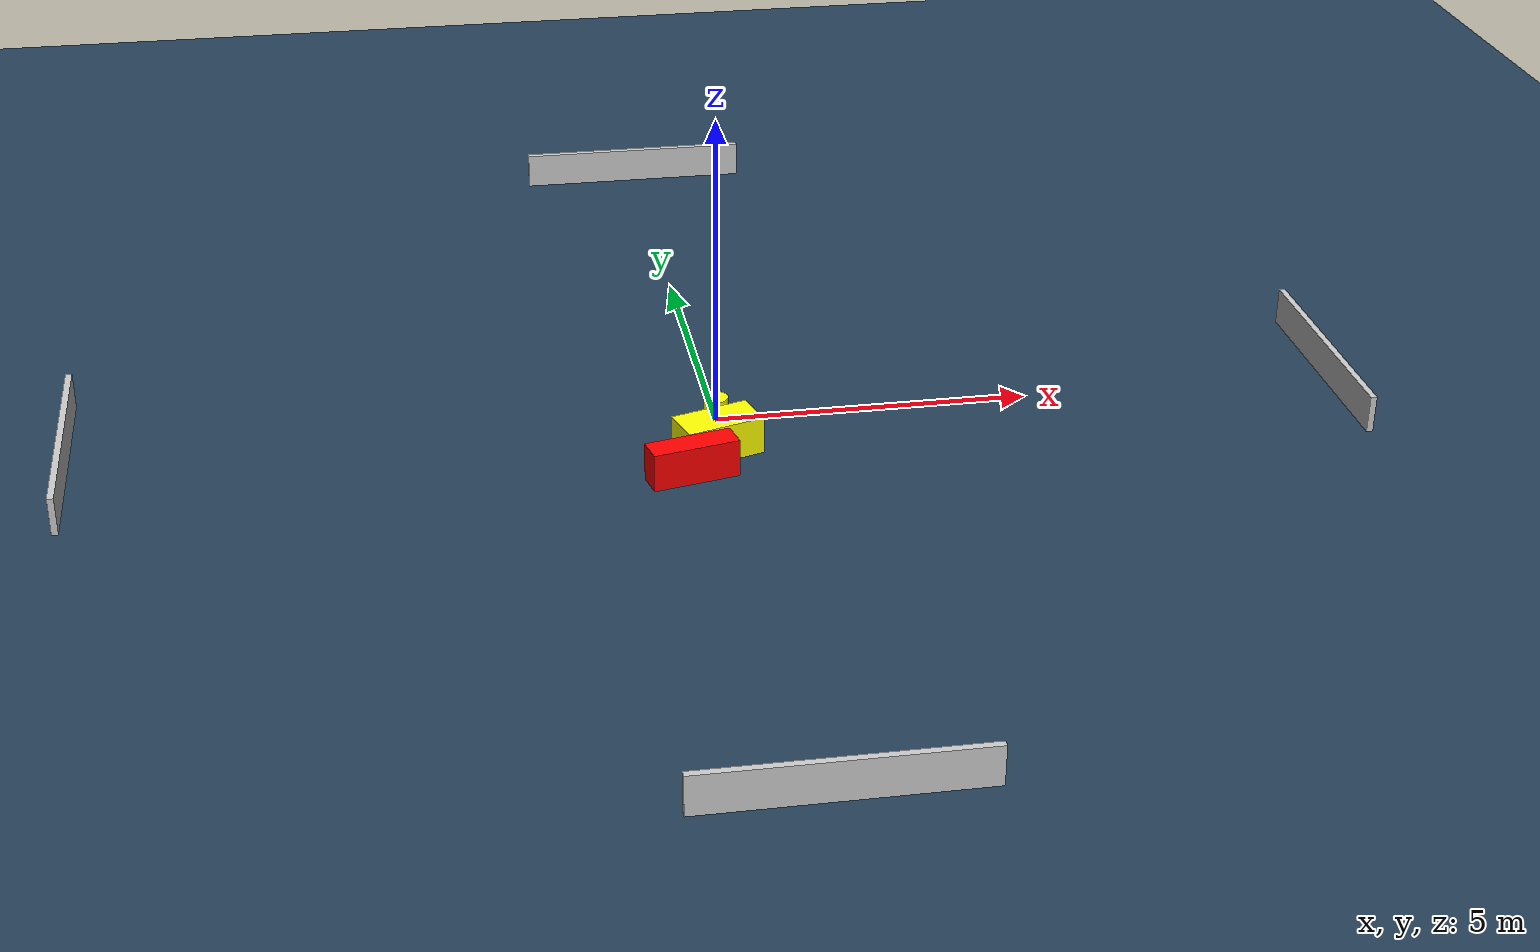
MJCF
<?xml version="1.0" ?>
<mujoco model="generated_environment">
  <option timestep="0.01" integrator="RK4" cone="elliptic"/>
  <default>
    <geom density="1"/>
  </default>
  <asset>
    <texture builtin="gradient" height="3072" name="skybox" rgb1="0.3 0.5 0.7" rgb2="0 0 0" type="skybox" width="512"/>
    <texture builtin="checker" height="300" name="groundplane" rgb1="0.2 0.3 0.4" rgb2="0.1 0.2 0.3" type="2d" width="300"/>
    <material name="groundplane" reflectance="0.2" texrepeat="5 5" texture="groundplane"/>
  </asset>
  <worldbody>
    <light dir="0 0 -1" directional="true" pos="0 0 1.5"/>
    <geom condim="3" friction="0.5 0.005 0.001" material="groundplane" name="floor" pos="0 0 0" size="0 0 0.05" type="plane"/>
    <body name="walls">
      <geom name="wall_1" condim="4" pos="-10.0 0.0 0.3" rgba="0.800000011920929 0.800000011920929 0.800000011920929 1.0" size="0.05 2.0 0.3" type="box"/>
      <geom name="wall_2" condim="4" pos="10.0 0.0 0.3" rgba="0.800000011920929 0.800000011920929 0.800000011920929 1.0" size="0.05 2.0 0.3" type="box"/>
      <geom name="wall_3" condim="4" pos="0.0 -10.0 0.3" rgba="0.800000011920929 0.800000011920929 0.800000011920929 1.0" size="2.0 0.05 0.3" type="box"/>
      <geom name="wall_4" condim="4" pos="0.0 10.0 0.3" rgba="0.800000011920929 0.800000011920929 0.800000011920929 1.0" size="2.0 0.05 0.3" type="box"/>
    </body>
    <body name="robot">
      <joint name="joint_x" type="slide" pos="0 0 0" axis="1 0 0"/>
      <joint name="joint_y" type="slide" pos="0 0 0" axis="0 1 0"/>
      <geom name="robot" type="cylinder" pos="0.0 0.0 0.2" size="0.2 0.2 0.0" mass="5.0" friction="1.0 0.005 0.0001" condim="4" rgba="1.0 1.0 0.0 1.0"/>
    </body>
    <body name="obstacle_1_movable">
      <geom name="obstacle_1_movable" condim="4" pos="-0.13331831424213383 -1.0461308517469725 0.3" euler="0 0 196.927484555453" friction="0.0 0.005 0.001" rgba="1.0 1.0 0.0 1.0" size="0.6286162861958113 0.3234830530604146 0.3" type="box" mass="0.1"/>
      <joint type="free"/>
    </body>
    <body name="obstacle_2_static">
      <geom name="obstacle_2_static" condim="4" pos="-0.6354028528529332 -1.7658434940250265 0.3" euler="0 0 102.33149865434926" friction="0.0 0.005 0.001" rgba="1.0 0.0 0.0 1.0" size="0.21419058858704743 0.6849813481650198 0.3" type="box"/>
    </body>
  </worldbody>
  <actuator>
    <motor name="actuator_x" joint="joint_x" gear="1" ctrlrange="-1 1"/>
    <motor name="actuator_y" joint="joint_y" gear="1" ctrlrange="-1 1"/>
  </actuator>
</mujoco>
